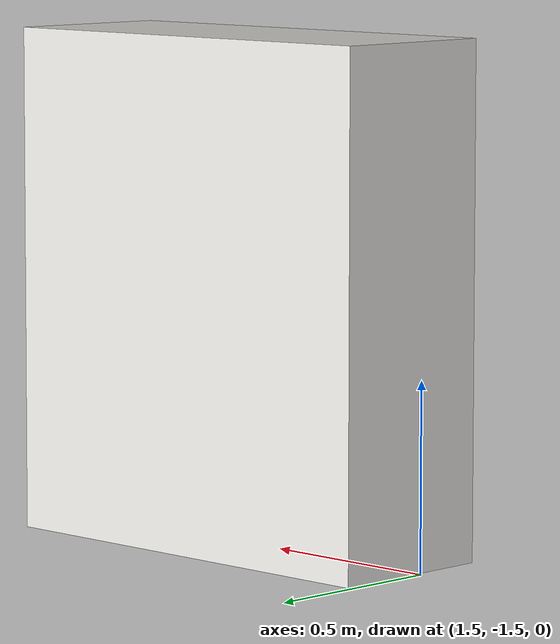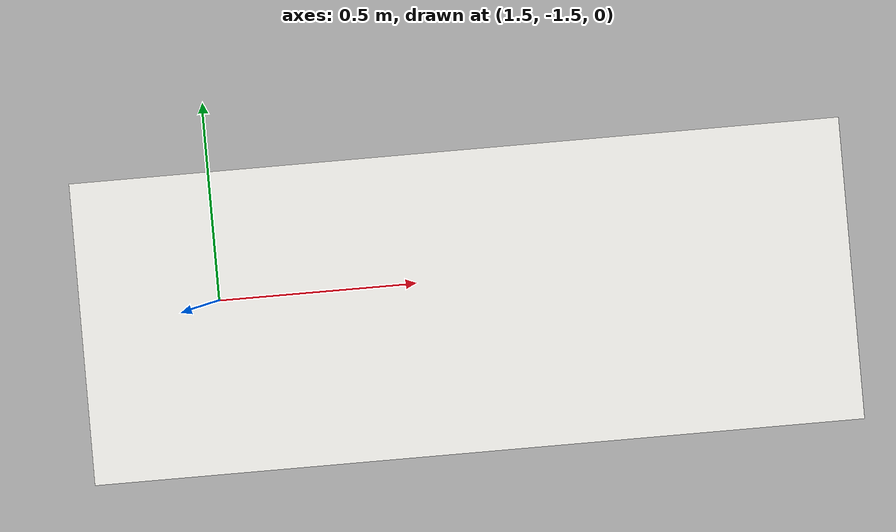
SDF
<?xml version="1.0"?>

<sdf version="1.4">
    <model name="cabinet">
        <static>true</static>
        <link name="cabinet_link">

            <visual name="cabinet_mesh">
                <geometry>
                    <mesh>
                        <uri>model://cabinet/meshes/model.dae</uri>
                    </mesh>
                </geometry>
            </visual>

            <collision name="cabinet_collison">
                <pose> 2.096100 -1.475009 0.663538 0 0 0</pose>
                <geometry>
                    <box>
                        <size>1.243740 0.475966 1.404310</size>
                    </box>
                </geometry>
            </collision>

        </link>
    </model>
</sdf>
